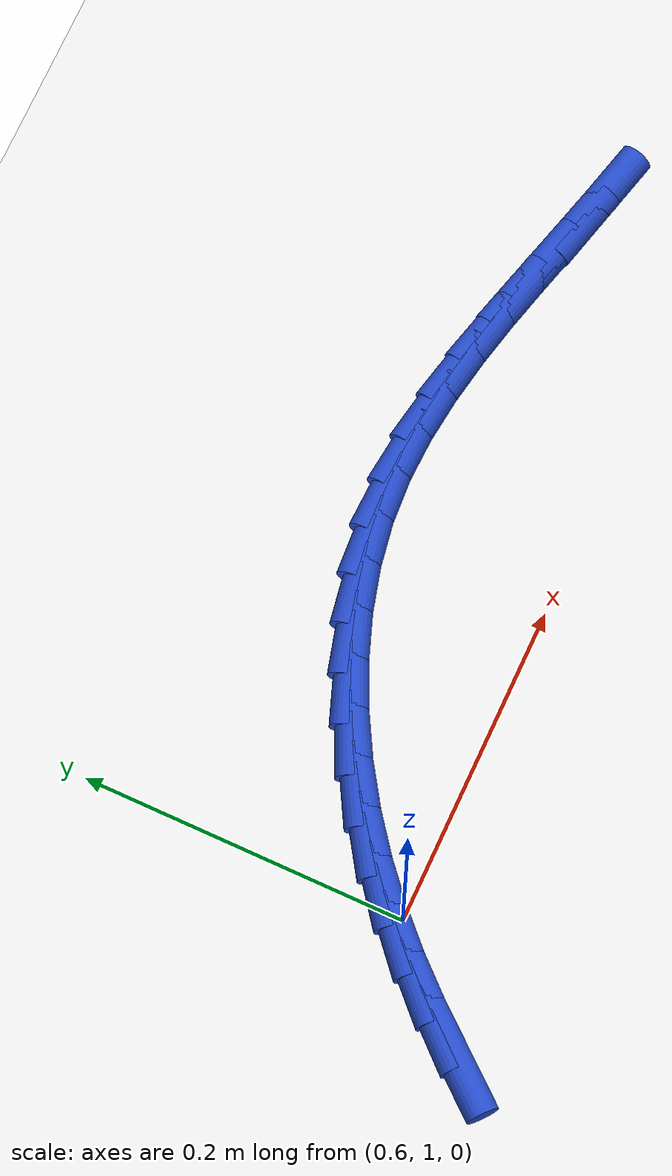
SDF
<sdf version="1.6">
 <world name="default">
  <model name="ground_plane">
   <static>1</static>
   <link name="link">
    <collision name="collision">
     <geometry><plane><normal>0 0 1</normal><size>100 100</size></plane></geometry>
     <surface><friction><ode><mu>100</mu><mu2>50</mu2></ode></friction></surface>
    </collision>
    <visual name="visual">
     <cast_shadows>0</cast_shadows>
     <geometry><plane><normal>0 0 1</normal><size>100 100</size></plane></geometry>
     <material>
      <script><uri>file://media/materials/scripts/gazebo.material</uri><name>Gazebo/WhiteGlow</name></script>
     </material>
    </visual>
   </link>
  </model>
  <model name="line">
   <link name="link_38">
    <pose>0.5406390944891573 0.9433524186581534 0.01 0 1.57 0.8772030614403291</pose>
    <collision name="collision">
     <geometry><cylinder><radius>0.01</radius><length>0.08</length></cylinder></geometry>
    </collision>
    <visual name="visual">
     <material>
      <script><name>Gazebo/Blue</name><uri>file://media/materials/scripts/gazebo.material</uri></script>
     </material>
     <geometry><cylinder><radius>0.01</radius><length>0.08</length></cylinder></geometry>
    </visual>
   </link>
   <link name="link_39">
    <pose>0.5594097534712219 0.9659297235783328 0.01 0 1.57 0.8306063174951915</pose>
    <collision name="collision">
     <geometry><cylinder><radius>0.01</radius><length>0.08</length></cylinder></geometry>
    </collision>
    <visual name="visual">
     <material>
      <script><name>Gazebo/Blue</name><uri>file://media/materials/scripts/gazebo.material</uri></script>
     </material>
     <geometry><cylinder><radius>0.01</radius><length>0.08</length></cylinder></geometry>
    </visual>
   </link>
   <link name="link_40">
    <pose>0.5792172751483076 0.9876143056124888 0.01 0 1.57 0.7768240533221795</pose>
    <collision name="collision">
     <geometry><cylinder><radius>0.01</radius><length>0.08</length></cylinder></geometry>
    </collision>
    <visual name="visual">
     <material>
      <script><name>Gazebo/Blue</name><uri>file://media/materials/scripts/gazebo.material</uri></script>
     </material>
     <geometry><cylinder><radius>0.01</radius><length>0.08</length></cylinder></geometry>
    </visual>
   </link>
   <link name="link_41">
    <pose>0.600205964406922 1.008246127283874 0.01 0 1.57 0.7161365700888618</pose>
    <collision name="collision">
     <geometry><cylinder><radius>0.01</radius><length>0.08</length></cylinder></geometry>
    </collision>
    <visual name="visual">
     <material>
      <script><name>Gazebo/Blue</name><uri>file://media/materials/scripts/gazebo.material</uri></script>
     </material>
     <geometry><cylinder><radius>0.01</radius><length>0.08</length></cylinder></geometry>
    </visual>
   </link>
   <link name="link_42">
    <pose>0.6225201261335723 1.0276651511157413 0.01 0 1.57 0.6494190573026699</pose>
    <collision name="collision">
     <geometry><cylinder><radius>0.01</radius><length>0.08</length></cylinder></geometry>
    </collision>
    <visual name="visual">
     <material>
      <script><name>Gazebo/Blue</name><uri>file://media/materials/scripts/gazebo.material</uri></script>
     </material>
     <geometry><cylinder><radius>0.01</radius><length>0.08</length></cylinder></geometry>
    </visual>
   </link>
   <link name="link_43">
    <pose>0.6462797596173784 1.0457055587449957 0.01 0 1.57 0.5798295341526052</pose>
    <collision name="collision">
     <geometry><cylinder><radius>0.01</radius><length>0.08</length></cylinder></geometry>
    </collision>
    <visual name="visual">
     <material>
      <script><name>Gazebo/Blue</name><uri>file://media/materials/scripts/gazebo.material</uri></script>
     </material>
     <geometry><cylinder><radius>0.01</radius><length>0.08</length></cylinder></geometry>
    </visual>
   </link>
   <link name="link_44">
    <pose>0.6713889193268939 1.0621501711098023 0.01 0 1.57 0.5077270279753926</pose>
    <collision name="collision">
     <geometry><cylinder><radius>0.01</radius><length>0.08</length></cylinder></geometry>
    </collision>
    <visual name="visual">
     <material>
      <script><name>Gazebo/Blue</name><uri>file://media/materials/scripts/gazebo.material</uri></script>
     </material>
     <geometry><cylinder><radius>0.01</radius><length>0.08</length></cylinder></geometry>
    </visual>
   </link>
   <link name="link_45">
    <pose>0.6976385797558144 1.0767549140067485 0.01 0 1.57 0.4316760063939173</pose>
    <collision name="collision">
     <geometry><cylinder><radius>0.01</radius><length>0.08</length></cylinder></geometry>
    </collision>
    <visual name="visual">
     <material>
      <script><name>Gazebo/Blue</name><uri>file://media/materials/scripts/gazebo.material</uri></script>
     </material>
     <geometry><cylinder><radius>0.01</radius><length>0.08</length></cylinder></geometry>
    </visual>
   </link>
   <link name="link_46">
    <pose>0.7248187229116121 1.0892754771777406 0.01 0 1.57 0.35023896406198085</pose>
    <collision name="collision">
     <geometry><cylinder><radius>0.01</radius><length>0.08</length></cylinder></geometry>
    </collision>
    <visual name="visual">
     <material>
      <script><name>Gazebo/Blue</name><uri>file://media/materials/scripts/gazebo.material</uri></script>
     </material>
     <geometry><cylinder><radius>0.01</radius><length>0.08</length></cylinder></geometry>
    </visual>
   </link>
   <link name="link_47">
    <pose>0.7527193308017591 1.0994675503646834 0.01 0 1.57 0.2620146007174666</pose>
    <collision name="collision">
     <geometry><cylinder><radius>0.01</radius><length>0.08</length></cylinder></geometry>
    </collision>
    <visual name="visual">
     <material>
      <script><name>Gazebo/Blue</name><uri>file://media/materials/scripts/gazebo.material</uri></script>
     </material>
     <geometry><cylinder><radius>0.01</radius><length>0.08</length></cylinder></geometry>
    </visual>
   </link>
   <link name="link_48">
    <pose>0.781130385433728 1.1070868233094833 0.01 0 1.57 0.1657218443309514</pose>
    <collision name="collision">
     <geometry><cylinder><radius>0.01</radius><length>0.08</length></cylinder></geometry>
    </collision>
    <visual name="visual">
     <material>
      <script><name>Gazebo/Blue</name><uri>file://media/materials/scripts/gazebo.material</uri></script>
     </material>
     <geometry><cylinder><radius>0.01</radius><length>0.08</length></cylinder></geometry>
    </visual>
   </link>
   <link name="link_49">
    <pose>0.8098418688149909 1.1118889857540455 0.01 0 1.57 0.06192056883636127</pose>
    <collision name="collision">
     <geometry><cylinder><radius>0.01</radius><length>0.08</length></cylinder></geometry>
    </collision>
    <visual name="visual">
     <material>
      <script><name>Gazebo/Blue</name><uri>file://media/materials/scripts/gazebo.material</uri></script>
     </material>
     <geometry><cylinder><radius>0.01</radius><length>0.08</length></cylinder></geometry>
    </visual>
   </link>
   <link name="link_50">
    <pose>0.8386570171993701 1.1136755200011257 0.01 0 1.57 -0.0345685828045062</pose>
    <collision name="collision">
     <geometry><cylinder><radius>0.01</radius><length>0.08</length></cylinder></geometry>
    </collision>
    <visual name="visual">
     <material>
      <script><name>Gazebo/Blue</name><uri>file://media/materials/scripts/gazebo.material</uri></script>
     </material>
     <geometry><cylinder><radius>0.01</radius><length>0.08</length></cylinder></geometry>
    </visual>
   </link>
   <link name="link_51">
    <pose>0.8675035354584865 1.1126779393491277 0.01 0 1.57 -0.11429857854425751</pose>
    <collision name="collision">
     <geometry><cylinder><radius>0.01</radius><length>0.08</length></cylinder></geometry>
    </collision>
    <visual name="visual">
     <material>
      <script><name>Gazebo/Blue</name><uri>file://media/materials/scripts/gazebo.material</uri></script>
     </material>
     <geometry><cylinder><radius>0.01</radius><length>0.08</length></cylinder></geometry>
    </visual>
   </link>
   <link name="link_52">
    <pose>0.8963772934705438 1.1093632627698347 0.01 0 1.57 -0.17677812990244735</pose>
    <collision name="collision">
     <geometry><cylinder><radius>0.01</radius><length>0.08</length></cylinder></geometry>
    </collision>
    <visual name="visual">
     <material>
      <script><name>Gazebo/Blue</name><uri>file://media/materials/scripts/gazebo.material</uri></script>
     </material>
     <geometry><cylinder><radius>0.01</radius><length>0.08</length></cylinder></geometry>
    </visual>
   </link>
   <link name="link_53">
    <pose>0.9252748582071858 1.1042009176476189 0.01 0 1.57 -0.22243489646195638</pose>
    <collision name="collision">
     <geometry><cylinder><radius>0.01</radius><length>0.08</length></cylinder></geometry>
    </collision>
    <visual name="visual">
     <material>
      <script><name>Gazebo/Blue</name><uri>file://media/materials/scripts/gazebo.material</uri></script>
     </material>
     <geometry><cylinder><radius>0.01</radius><length>0.08</length></cylinder></geometry>
    </visual>
   </link>
   <link name="link_54">
    <pose>0.9541927966400562 1.097660331366852 0.01 0 1.57 -0.2519817851618204</pose>
    <collision name="collision">
     <geometry><cylinder><radius>0.01</radius><length>0.08</length></cylinder></geometry>
    </collision>
    <visual name="visual">
     <material>
      <script><name>Gazebo/Blue</name><uri>file://media/materials/scripts/gazebo.material</uri></script>
     </material>
     <geometry><cylinder><radius>0.01</radius><length>0.08</length></cylinder></geometry>
    </visual>
   </link>
   <link name="link_55">
    <pose>0.9831276757407983 1.0902109313119068 0.01 0 1.57 -0.26605178722382383</pose>
    <collision name="collision">
     <geometry><cylinder><radius>0.01</radius><length>0.08</length></cylinder></geometry>
    </collision>
    <visual name="visual">
     <material>
      <script><name>Gazebo/Blue</name><uri>file://media/materials/scripts/gazebo.material</uri></script>
     </material>
     <geometry><cylinder><radius>0.01</radius><length>0.08</length></cylinder></geometry>
    </visual>
   </link>
   <link name="link_56">
    <pose>1.0120760624810567 1.0823221448671554 0.01 0 1.57 -0.2649975631777457</pose>
    <collision name="collision">
     <geometry><cylinder><radius>0.01</radius><length>0.08</length></cylinder></geometry>
    </collision>
    <visual name="visual">
     <material>
      <script><name>Gazebo/Blue</name><uri>file://media/materials/scripts/gazebo.material</uri></script>
     </material>
     <geometry><cylinder><radius>0.01</radius><length>0.08</length></cylinder></geometry>
    </visual>
   </link>
   <link name="link_57">
    <pose>1.0410345238324745 1.07446339941697 0.01 0 1.57 -0.24880924447874803</pose>
    <collision name="collision">
     <geometry><cylinder><radius>0.01</radius><length>0.08</length></cylinder></geometry>
    </collision>
    <visual name="visual">
     <material>
      <script><name>Gazebo/Blue</name><uri>file://media/materials/scripts/gazebo.material</uri></script>
     </material>
     <geometry><cylinder><radius>0.01</radius><length>0.08</length></cylinder></geometry>
    </visual>
   </link>
  </model>
 </world>
</sdf>
